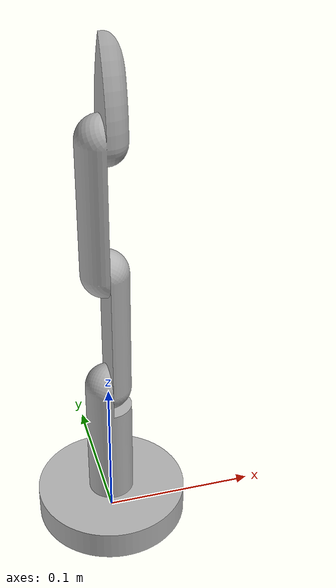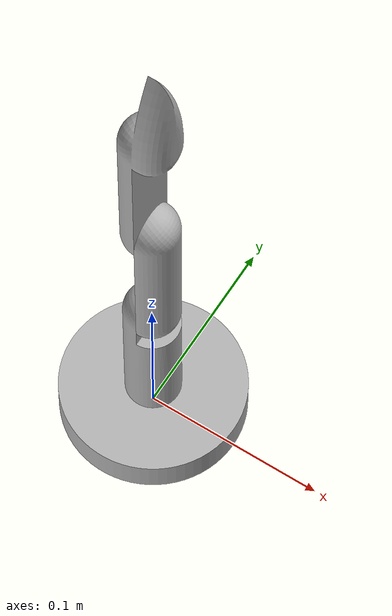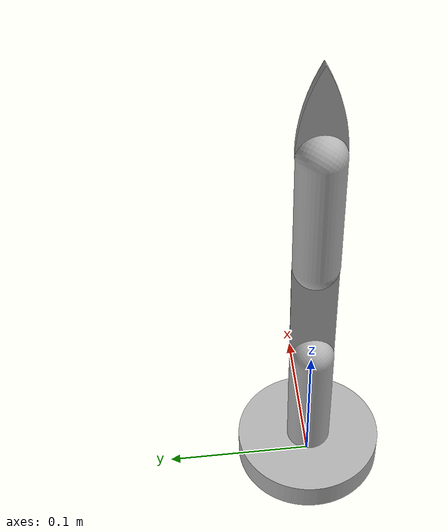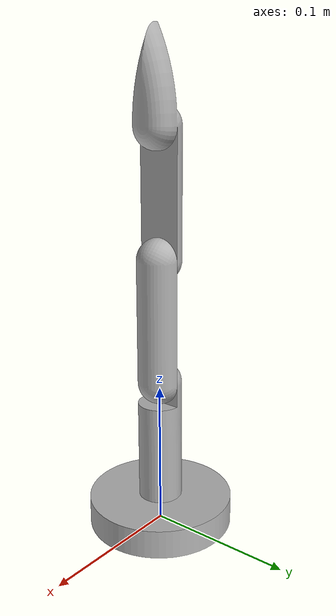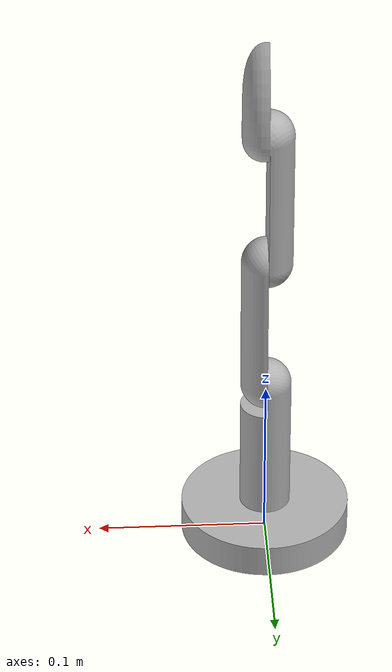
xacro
<?xml version="1.0" ?>
<robot name="simple_robot_arm" xmlns:xacro="http://www.ros.org/wiki/xacro">

<xacro:include filename="$(find simple_robot_arm_description)/urdf/materials.xacro" />
<xacro:include filename="$(find simple_robot_arm_description)/urdf/simple_robot_arm.trans" />
<xacro:include filename="$(find simple_robot_arm_description)/urdf/simple_robot_arm.gazebo" />
<link name="base_link">
  <inertial>
    <origin xyz="-7.237528875152536e-18 -1.447505775030507e-17 0.01" rpy="0 0 0"/>
    <mass value="1.2330751165339937"/>
    <inertia ixx="0.000812" iyy="0.000812" izz="0.001541" ixy="-0.0" iyz="-0.0" ixz="0.0"/>
  </inertial>
  <visual>
    <origin xyz="0 0 0" rpy="0 0 0"/>
    <geometry>
      <mesh filename="file://$(find simple_robot_arm_description)/meshes/base_link.stl" scale="0.001 0.001 0.001"/>
    </geometry>
    <material name="silver"/>
  </visual>
  <collision>
    <origin xyz="0 0 0" rpy="0 0 0"/>
    <geometry>
      <mesh filename="file://$(find simple_robot_arm_description)/meshes/base_link.stl" scale="0.001 0.001 0.001"/>
    </geometry>
  </collision>
</link>

<link name="arm_A_1">
  <inertial>
    <origin xyz="-0.0009196543385159698 0.0 0.04223484848484847" rpy="0 0 0"/>
    <mass value="0.4577791370132453"/>
    <inertia ixx="0.000322" iyy="0.000322" izz="5e-05" ixy="-0.0" iyz="0.0" ixz="1.7e-05"/>
  </inertial>
  <visual>
    <origin xyz="-0.0 -0.0 -0.02" rpy="0 0 0"/>
    <geometry>
      <mesh filename="file://$(find simple_robot_arm_description)/meshes/arm_A_1.stl" scale="0.001 0.001 0.001"/>
    </geometry>
    <material name="silver"/>
  </visual>
  <collision>
    <origin xyz="-0.0 -0.0 -0.02" rpy="0 0 0"/>
    <geometry>
      <mesh filename="file://$(find simple_robot_arm_description)/meshes/arm_A_1.stl" scale="0.001 0.001 0.001"/>
    </geometry>
  </collision>
</link>

<link name="arm_B_1">
  <inertial>
    <origin xyz="0.0062250172159184665 0.0 0.04250000029731875" rpy="0 0 0"/>
    <mass value="0.2913139988948921"/>
    <inertia ixx="0.000287" iyy="0.000276" izz="2e-05" ixy="0.0" iyz="0.0" ixz="-0.0"/>
  </inertial>
  <visual>
    <origin xyz="-0.0 -0.0 -0.105" rpy="0 0 0"/>
    <geometry>
      <mesh filename="file://$(find simple_robot_arm_description)/meshes/arm_B_1.stl" scale="0.001 0.001 0.001"/>
    </geometry>
    <material name="silver"/>
  </visual>
  <collision>
    <origin xyz="-0.0 -0.0 -0.105" rpy="0 0 0"/>
    <geometry>
      <mesh filename="file://$(find simple_robot_arm_description)/meshes/arm_B_1.stl" scale="0.001 0.001 0.001"/>
    </geometry>
  </collision>
</link>

<link name="arm_C_1">
  <inertial>
    <origin xyz="-0.0020622699004024625 -6.296300874008972e-07 0.06181915500648305" rpy="0 0 0"/>
    <mass value="0.4367163420349379"/>
    <inertia ixx="0.000661" iyy="0.000661" izz="4.4e-05" ixy="0.0" iyz="0.0" ixz="-7e-05"/>
  </inertial>
  <visual>
    <origin xyz="-0.0 0.0 -0.19" rpy="0 0 0"/>
    <geometry>
      <mesh filename="file://$(find simple_robot_arm_description)/meshes/arm_C_1.stl" scale="0.001 0.001 0.001"/>
    </geometry>
    <material name="silver"/>
  </visual>
  <collision>
    <origin xyz="-0.0 0.0 -0.19" rpy="0 0 0"/>
    <geometry>
      <mesh filename="file://$(find simple_robot_arm_description)/meshes/arm_C_1.stl" scale="0.001 0.001 0.001"/>
    </geometry>
  </collision>
</link>

<joint name="Revolute 1" type="continuous">
  <origin xyz="0.0 0.0 0.02" rpy="0 0 0"/>
  <parent link="base_link"/>
  <child link="arm_A_1"/>
  <axis xyz="0.0 0.0 1.0"/>
</joint>

<joint name="Revolute 2" type="continuous">
  <origin xyz="0.0 0.0 0.085" rpy="0 0 0"/>
  <parent link="arm_A_1"/>
  <child link="arm_B_1"/>
  <axis xyz="1.0 0.0 0.0"/>
</joint>

<joint name="Revolute 3" type="continuous">
  <origin xyz="0.0 -0.0 0.085" rpy="0 0 0"/>
  <parent link="arm_B_1"/>
  <child link="arm_C_1"/>
  <axis xyz="-1.0 0.0 0.0"/>
</joint>

</robot>

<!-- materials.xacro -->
<robot name="simple_robot_arm" xmlns:xacro="http://www.ros.org/wiki/xacro" >

<material name="silver">
  <color rgba="0.700 0.700 0.700 1.000"/>
</material>

</robot>

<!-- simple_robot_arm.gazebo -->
<robot name="simple_robot_arm" xmlns:xacro="http://www.ros.org/wiki/xacro" >

<xacro:property name="body_color" value="Gazebo/Silver" />

<gazebo>
  <plugin name="control" filename="libgazebo_ros_control.so"/>
</gazebo>
<gazebo reference="base_link">
  <material>${body_color}</material>
  <mu1>0.2</mu1>
  <mu2>0.2</mu2>
  <self_collide>true</self_collide>
  <gravity>true</gravity>
</gazebo>

<gazebo reference="arm_A_1">
  <material>${body_color}</material>
  <mu1>0.2</mu1>
  <mu2>0.2</mu2>
  <self_collide>true</self_collide>
</gazebo>

<gazebo reference="arm_B_1">
  <material>${body_color}</material>
  <mu1>0.2</mu1>
  <mu2>0.2</mu2>
  <self_collide>true</self_collide>
</gazebo>

<gazebo reference="arm_C_1">
  <material>${body_color}</material>
  <mu1>0.2</mu1>
  <mu2>0.2</mu2>
  <self_collide>true</self_collide>
</gazebo>

</robot>
